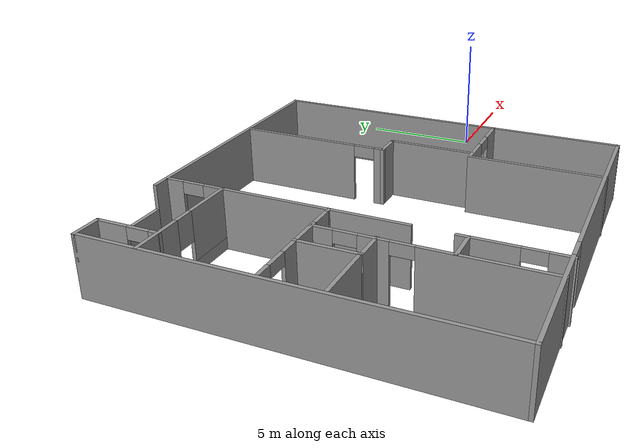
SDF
<?xml version='1.0'?>
<sdf version='1.6'>
  <model name='myHome'>
    <pose frame=''>-11.6078 -0.126317 0 0 -0 0</pose>
    <link name='Wall_10'>
      <pose frame=''>-5.11769 5.23212 0 0 -0 0</pose>
      <visual name='Wall_10_Visual_0'>
        <pose frame=''>-1.42901 0 1.25 0 -0 0</pose>
        <geometry>
          <box>
            <size>2.14199 0.15 2.5</size>
          </box>
        </geometry>
        <material>
          <script>
            <uri>file://media/materials/scripts/gazebo.material</uri>
            <name>Gazebo/Grey</name>
          </script>
          <ambient>1 1 1 1</ambient>
        </material>
        <meta>
          <layer>0</layer>
        </meta>
      </visual>
      <collision name='Wall_10_Collision_0'>
        <geometry>
          <box>
            <size>2.14199 0.15 2.5</size>
          </box>
        </geometry>
        <pose frame=''>-1.42901 0 1.25 0 -0 0</pose>
      </collision>
      <visual name='Wall_10_Visual_1'>
        <pose frame=''>1.07099 0 0.25 0 -0 0</pose>
        <geometry>
          <box>
            <size>2.85801 0.15 0.5</size>
          </box>
        </geometry>
        <material>
          <script>
            <uri>file://media/materials/scripts/gazebo.material</uri>
            <name>Gazebo/Grey</name>
          </script>
          <ambient>1 1 1 1</ambient>
        </material>
        <meta>
          <layer>0</layer>
        </meta>
      </visual>
      <collision name='Wall_10_Collision_1'>
        <geometry>
          <box>
            <size>2.85801 0.15 0.5</size>
          </box>
        </geometry>
        <pose frame=''>1.07099 0 0.25 0 -0 0</pose>
      </collision>
      <visual name='Wall_10_Visual_2'>
        <pose frame=''>1.47099 0 1.5 0 -0 0</pose>
        <geometry>
          <box>
            <size>2.05801 0.15 2</size>
          </box>
        </geometry>
        <material>
          <script>
            <uri>file://media/materials/scripts/gazebo.material</uri>
            <name>Gazebo/Grey</name>
          </script>
          <ambient>1 1 1 1</ambient>
        </material>
        <meta>
          <layer>0</layer>
        </meta>
      </visual>
      <collision name='Wall_10_Collision_2'>
        <geometry>
          <box>
            <size>2.05801 0.15 2</size>
          </box>
        </geometry>
        <pose frame=''>1.47099 0 1.5 0 -0 0</pose>
      </collision>
      <visual name='Wall_10_Visual_3'>
        <pose frame=''>0.041986 0 1.9 0 -0 0</pose>
        <geometry>
          <box>
            <size>0.8 0.15 1.2</size>
          </box>
        </geometry>
        <material>
          <script>
            <uri>file://media/materials/scripts/gazebo.material</uri>
            <name>Gazebo/Grey</name>
          </script>
          <ambient>1 1 1 1</ambient>
        </material>
        <meta>
          <layer>0</layer>
        </meta>
      </visual>
      <collision name='Wall_10_Collision_3'>
        <geometry>
          <box>
            <size>0.8 0.15 1.2</size>
          </box>
        </geometry>
        <pose frame=''>0.041986 0 1.9 0 -0 0</pose>
      </collision>
    </link>
    <link name='Wall_12'>
      <pose frame=''>-5.07251 0.82481 0 0 -0 0.002718</pose>
      <visual name='Wall_12_Visual_0'>
        <pose frame=''>-2.12256 0 1.25 0 -0 0</pose>
        <geometry>
          <box>
            <size>0.729711 0.15 2.5</size>
          </box>
        </geometry>
        <material>
          <script>
            <uri>file://media/materials/scripts/gazebo.material</uri>
            <name>Gazebo/Grey</name>
          </script>
          <ambient>1 1 1 1</ambient>
        </material>
        <meta>
          <layer>0</layer>
        </meta>
      </visual>
      <collision name='Wall_12_Collision_0'>
        <geometry>
          <box>
            <size>0.729711 0.15 2.5</size>
          </box>
        </geometry>
        <pose frame=''>-2.12256 0 1.25 0 -0 0</pose>
      </collision>
      <visual name='Wall_12_Visual_1'>
        <pose frame=''>0.241986 0 1.25 0 -0 0</pose>
        <geometry>
          <box>
            <size>2.19939 0.15 2.5</size>
          </box>
        </geometry>
        <material>
          <script>
            <uri>file://media/materials/scripts/gazebo.material</uri>
            <name>Gazebo/Grey</name>
          </script>
          <ambient>1 1 1 1</ambient>
        </material>
        <meta>
          <layer>0</layer>
        </meta>
      </visual>
      <collision name='Wall_12_Collision_1'>
        <geometry>
          <box>
            <size>2.19939 0.15 2.5</size>
          </box>
        </geometry>
        <pose frame=''>0.241986 0 1.25 0 -0 0</pose>
      </collision>
      <visual name='Wall_12_Visual_2'>
        <pose frame=''>2.36455 0 1.25 0 -0 0</pose>
        <geometry>
          <box>
            <size>0.245739 0.15 2.5</size>
          </box>
        </geometry>
        <material>
          <script>
            <uri>file://media/materials/scripts/gazebo.material</uri>
            <name>Gazebo/Grey</name>
          </script>
          <ambient>1 1 1 1</ambient>
        </material>
        <meta>
          <layer>0</layer>
        </meta>
      </visual>
      <collision name='Wall_12_Collision_2'>
        <geometry>
          <box>
            <size>0.245739 0.15 2.5</size>
          </box>
        </geometry>
        <pose frame=''>2.36455 0 1.25 0 -0 0</pose>
      </collision>
      <visual name='Wall_12_Visual_3'>
        <pose frame=''>-1.30771 0 2.25 0 -0 0</pose>
        <geometry>
          <box>
            <size>0.9 0.15 0.5</size>
          </box>
        </geometry>
        <material>
          <script>
            <uri>file://media/materials/scripts/gazebo.material</uri>
            <name>Gazebo/Grey</name>
          </script>
          <ambient>1 1 1 1</ambient>
        </material>
        <meta>
          <layer>0</layer>
        </meta>
      </visual>
      <collision name='Wall_12_Collision_3'>
        <geometry>
          <box>
            <size>0.9 0.15 0.5</size>
          </box>
        </geometry>
        <pose frame=''>-1.30771 0 2.25 0 -0 0</pose>
      </collision>
      <visual name='Wall_12_Visual_4'>
        <pose frame=''>1.79168 0 2.25 0 -0 0</pose>
        <geometry>
          <box>
            <size>0.9 0.15 0.5</size>
          </box>
        </geometry>
        <material>
          <script>
            <uri>file://media/materials/scripts/gazebo.material</uri>
            <name>Gazebo/Grey</name>
          </script>
          <ambient>1 1 1 1</ambient>
        </material>
        <meta>
          <layer>0</layer>
        </meta>
      </visual>
      <collision name='Wall_12_Collision_4'>
        <geometry>
          <box>
            <size>0.9 0.15 0.5</size>
          </box>
        </geometry>
        <pose frame=''>1.79168 0 2.25 0 -0 0</pose>
      </collision>
    </link>
    <link name='Wall_14'>
      <collision name='Wall_14_Collision'>
        <geometry>
          <box>
            <size>2.5 0.15 2.5</size>
          </box>
        </geometry>
        <pose frame=''>0 0 1.25 0 -0 0</pose>
      </collision>
      <visual name='Wall_14_Visual'>
        <pose frame=''>0 0 1.25 0 -0 0</pose>
        <geometry>
          <box>
            <size>2.5 0.15 2.5</size>
          </box>
        </geometry>
        <material>
          <script>
            <uri>file://media/materials/scripts/gazebo.material</uri>
            <name>Gazebo/Grey</name>
          </script>
          <ambient>1 1 1 1</ambient>
        </material>
        <meta>
          <layer>0</layer>
        </meta>
      </visual>
      <pose frame=''>-6.27494 -1.49043 0 0 -0 0</pose>
    </link>
    <link name='Wall_15'>
      <collision name='Wall_15_Collision'>
        <geometry>
          <box>
            <size>2.47215 0.15 2.5</size>
          </box>
        </geometry>
        <pose frame=''>0 0 1.25 0 -0 0</pose>
      </collision>
      <visual name='Wall_15_Visual'>
        <pose frame=''>0 0 1.25 0 -0 0</pose>
        <geometry>
          <box>
            <size>2.47215 0.15 2.5</size>
          </box>
        </geometry>
        <material>
          <script>
            <uri>file://media/materials/scripts/gazebo.material</uri>
            <name>Gazebo/Grey</name>
          </script>
          <ambient>1 1 1 1</ambient>
        </material>
        <meta>
          <layer>0</layer>
        </meta>
      </visual>
      <pose frame=''>-5.10497 -0.329534 0 0 -0 1.57513</pose>
    </link>
    <link name='Wall_2'>
      <pose frame=''>-0.004229 -7.66387 0 0 -0 0</pose>
      <visual name='Wall_2_Visual_0'>
        <pose frame=''>-5.06689 0 1.25 0 -0 0</pose>
        <geometry>
          <box>
            <size>5.11623 0.15 2.5</size>
          </box>
        </geometry>
        <material>
          <script>
            <uri>file://media/materials/scripts/gazebo.material</uri>
            <name>Gazebo/Grey</name>
          </script>
          <ambient>1 1 1 1</ambient>
        </material>
        <meta>
          <layer>0</layer>
        </meta>
      </visual>
      <collision name='Wall_2_Collision_0'>
        <geometry>
          <box>
            <size>5.11623 0.15 2.5</size>
          </box>
        </geometry>
        <pose frame=''>-5.06689 0 1.25 0 -0 0</pose>
      </collision>
      <visual name='Wall_2_Visual_1'>
        <pose frame=''>3.00811 0 1.25 0 -0 0</pose>
        <geometry>
          <box>
            <size>9.23377 0.15 2.5</size>
          </box>
        </geometry>
        <material>
          <script>
            <uri>file://media/materials/scripts/gazebo.material</uri>
            <name>Gazebo/Grey</name>
          </script>
          <ambient>1 1 1 1</ambient>
        </material>
        <meta>
          <layer>0</layer>
        </meta>
      </visual>
      <collision name='Wall_2_Collision_1'>
        <geometry>
          <box>
            <size>9.23377 0.15 2.5</size>
          </box>
        </geometry>
        <pose frame=''>3.00811 0 1.25 0 -0 0</pose>
      </collision>
      <visual name='Wall_2_Visual_2'>
        <pose frame=''>-2.05877 0 2.25 0 -0 0</pose>
        <geometry>
          <box>
            <size>0.9 0.15 0.5</size>
          </box>
        </geometry>
        <material>
          <script>
            <uri>file://media/materials/scripts/gazebo.material</uri>
            <name>Gazebo/Grey</name>
          </script>
          <ambient>1 1 1 1</ambient>
        </material>
        <meta>
          <layer>0</layer>
        </meta>
      </visual>
      <collision name='Wall_2_Collision_2'>
        <geometry>
          <box>
            <size>0.9 0.15 0.5</size>
          </box>
        </geometry>
        <pose frame=''>-2.05877 0 2.25 0 -0 0</pose>
      </collision>
    </link>
    <link name='Wall_20'>
      <pose frame=''>-2.69017 -5.80768 0 0 -0 1.5708</pose>
      <visual name='Wall_20_Visual_0'>
        <pose frame=''>-1.56183 0 1.25 0 -0 0</pose>
        <geometry>
          <box>
            <size>0.876348 0.15 2.5</size>
          </box>
        </geometry>
        <material>
          <script>
            <uri>file://media/materials/scripts/gazebo.material</uri>
            <name>Gazebo/Grey</name>
          </script>
          <ambient>1 1 1 1</ambient>
        </material>
        <meta>
          <layer>0</layer>
        </meta>
      </visual>
      <collision name='Wall_20_Collision_0'>
        <geometry>
          <box>
            <size>0.876348 0.15 2.5</size>
          </box>
        </geometry>
        <pose frame=''>-1.56183 0 1.25 0 -0 0</pose>
      </collision>
      <visual name='Wall_20_Visual_1'>
        <pose frame=''>0.888174 0 1.25 0 -0 0</pose>
        <geometry>
          <box>
            <size>2.22365 0.15 2.5</size>
          </box>
        </geometry>
        <material>
          <script>
            <uri>file://media/materials/scripts/gazebo.material</uri>
            <name>Gazebo/Grey</name>
          </script>
          <ambient>1 1 1 1</ambient>
        </material>
        <meta>
          <layer>0</layer>
        </meta>
      </visual>
      <collision name='Wall_20_Collision_1'>
        <geometry>
          <box>
            <size>2.22365 0.15 2.5</size>
          </box>
        </geometry>
        <pose frame=''>0.888174 0 1.25 0 -0 0</pose>
      </collision>
      <visual name='Wall_20_Visual_2'>
        <pose frame=''>-0.673652 0 2.25 0 -0 0</pose>
        <geometry>
          <box>
            <size>0.9 0.15 0.5</size>
          </box>
        </geometry>
        <material>
          <script>
            <uri>file://media/materials/scripts/gazebo.material</uri>
            <name>Gazebo/Grey</name>
          </script>
          <ambient>1 1 1 1</ambient>
        </material>
        <meta>
          <layer>0</layer>
        </meta>
      </visual>
      <collision name='Wall_20_Collision_2'>
        <geometry>
          <box>
            <size>0.9 0.15 0.5</size>
          </box>
        </geometry>
        <pose frame=''>-0.673652 0 2.25 0 -0 0</pose>
      </collision>
    </link>
    <link name='Wall_25'>
      <pose frame=''>-3.96066 -3.43328 0 0 0 -1.5708</pose>
      <visual name='Wall_25_Visual_0'>
        <pose frame=''>-3.89689 0 1.25 0 -0 0</pose>
        <geometry>
          <box>
            <size>0.885529 0.15 2.5</size>
          </box>
        </geometry>
        <material>
          <script>
            <uri>file://media/materials/scripts/gazebo.material</uri>
            <name>Gazebo/Grey</name>
          </script>
          <ambient>1 1 1 1</ambient>
        </material>
        <meta>
          <layer>0</layer>
        </meta>
      </visual>
      <collision name='Wall_25_Collision_0'>
        <geometry>
          <box>
            <size>0.885529 0.15 2.5</size>
          </box>
        </geometry>
        <pose frame=''>-3.89689 0 1.25 0 -0 0</pose>
      </collision>
      <visual name='Wall_25_Visual_1'>
        <pose frame=''>-1.98599 0 1.25 0 -0 0</pose>
        <geometry>
          <box>
            <size>1.13626 0.15 2.5</size>
          </box>
        </geometry>
        <material>
          <script>
            <uri>file://media/materials/scripts/gazebo.material</uri>
            <name>Gazebo/Grey</name>
          </script>
          <ambient>1 1 1 1</ambient>
        </material>
        <meta>
          <layer>0</layer>
        </meta>
      </visual>
      <collision name='Wall_25_Collision_1'>
        <geometry>
          <box>
            <size>1.13626 0.15 2.5</size>
          </box>
        </geometry>
        <pose frame=''>-1.98599 0 1.25 0 -0 0</pose>
      </collision>
      <visual name='Wall_25_Visual_2'>
        <pose frame=''>1.91089 0 1.25 0 -0 0</pose>
        <geometry>
          <box>
            <size>4.85751 0.15 2.5</size>
          </box>
        </geometry>
        <material>
          <script>
            <uri>file://media/materials/scripts/gazebo.material</uri>
            <name>Gazebo/Grey</name>
          </script>
          <ambient>1 1 1 1</ambient>
        </material>
        <meta>
          <layer>0</layer>
        </meta>
      </visual>
      <collision name='Wall_25_Collision_2'>
        <geometry>
          <box>
            <size>4.85751 0.15 2.5</size>
          </box>
        </geometry>
        <pose frame=''>1.91089 0 1.25 0 -0 0</pose>
      </collision>
      <visual name='Wall_25_Visual_3'>
        <pose frame=''>-3.00412 0 2.25 0 -0 0</pose>
        <geometry>
          <box>
            <size>0.9 0.15 0.5</size>
          </box>
        </geometry>
        <material>
          <script>
            <uri>file://media/materials/scripts/gazebo.material</uri>
            <name>Gazebo/Grey</name>
          </script>
          <ambient>1 1 1 1</ambient>
        </material>
        <meta>
          <layer>0</layer>
        </meta>
      </visual>
      <collision name='Wall_25_Collision_3'>
        <geometry>
          <box>
            <size>0.9 0.15 0.5</size>
          </box>
        </geometry>
        <pose frame=''>-3.00412 0 2.25 0 -0 0</pose>
      </collision>
      <visual name='Wall_25_Visual_4'>
        <pose frame=''>-0.967864 0 2.25 0 -0 0</pose>
        <geometry>
          <box>
            <size>0.9 0.15 0.5</size>
          </box>
        </geometry>
        <material>
          <script>
            <uri>file://media/materials/scripts/gazebo.material</uri>
            <name>Gazebo/Grey</name>
          </script>
          <ambient>1 1 1 1</ambient>
        </material>
        <meta>
          <layer>0</layer>
        </meta>
      </visual>
      <collision name='Wall_25_Collision_4'>
        <geometry>
          <box>
            <size>0.9 0.15 0.5</size>
          </box>
        </geometry>
        <pose frame=''>-0.967864 0 2.25 0 -0 0</pose>
      </collision>
    </link>
    <link name='Wall_27'>
      <collision name='Wall_27_Collision'>
        <geometry>
          <box>
            <size>1.29934 0.15 2.5</size>
          </box>
        </geometry>
        <pose frame=''>0 0 1.25 0 -0 0</pose>
      </collision>
      <visual name='Wall_27_Visual'>
        <pose frame=''>0 0 1.25 0 -0 0</pose>
        <geometry>
          <box>
            <size>1.29934 0.15 2.5</size>
          </box>
        </geometry>
        <material>
          <script>
            <uri>file://media/materials/scripts/gazebo.material</uri>
            <name>Gazebo/Grey</name>
          </script>
          <ambient>1 1 1 1</ambient>
        </material>
        <meta>
          <layer>0</layer>
        </meta>
      </visual>
      <pose frame=''>-4.50509 -1.5278 0 0 -0 0</pose>
    </link>
    <link name='Wall_29'>
      <collision name='Wall_29_Collision'>
        <geometry>
          <box>
            <size>1.36212 0.15 2.5</size>
          </box>
        </geometry>
        <pose frame=''>0 0 1.25 0 -0 0</pose>
      </collision>
      <visual name='Wall_29_Visual'>
        <pose frame=''>0 0 1.25 0 -0 0</pose>
        <geometry>
          <box>
            <size>1.36212 0.15 2.5</size>
          </box>
        </geometry>
        <material>
          <script>
            <uri>file://media/materials/scripts/gazebo.material</uri>
            <name>Gazebo/Grey</name>
          </script>
          <ambient>1 1 1 1</ambient>
        </material>
        <meta>
          <layer>0</layer>
        </meta>
      </visual>
      <pose frame=''>-3.33093 -4.27511 0 0 -0 0</pose>
    </link>
    <link name='Wall_3'>
      <collision name='Wall_3_Collision'>
        <geometry>
          <box>
            <size>15.5462 0.15 2.5</size>
          </box>
        </geometry>
        <pose frame=''>0 0 1.25 0 -0 0</pose>
      </collision>
      <visual name='Wall_3_Visual'>
        <pose frame=''>0 0 1.25 0 -0 0</pose>
        <geometry>
          <box>
            <size>15.5462 0.15 2.5</size>
          </box>
        </geometry>
        <material>
          <script>
            <uri>file://media/materials/scripts/gazebo.material</uri>
            <name>Gazebo/Grey</name>
          </script>
          <ambient>1 1 1 1</ambient>
        </material>
        <meta>
          <layer>0</layer>
        </meta>
      </visual>
      <pose frame=''>7.5458 0.034222 0 0 -0 1.57079</pose>
    </link>
    <link name='Wall_33'>
      <pose frame=''>-2.65447 2.71323 0 0 -0 1.5708</pose>
      <visual name='Wall_33_Visual_0'>
        <pose frame=''>-0.835326 0 1.25 0 -0 0</pose>
        <geometry>
          <box>
            <size>8.32935 0.15 2.5</size>
          </box>
        </geometry>
        <material>
          <script>
            <uri>file://media/materials/scripts/gazebo.material</uri>
            <name>Gazebo/Grey</name>
          </script>
          <ambient>1 1 1 1</ambient>
        </material>
        <meta>
          <layer>0</layer>
        </meta>
      </visual>
      <collision name='Wall_33_Collision_0'>
        <geometry>
          <box>
            <size>8.32935 0.15 2.5</size>
          </box>
        </geometry>
        <pose frame=''>-0.835326 0 1.25 0 -0 0</pose>
      </collision>
      <visual name='Wall_33_Visual_1'>
        <pose frame=''>4.61467 0 1.25 0 -0 0</pose>
        <geometry>
          <box>
            <size>0.770652 0.15 2.5</size>
          </box>
        </geometry>
        <material>
          <script>
            <uri>file://media/materials/scripts/gazebo.material</uri>
            <name>Gazebo/Grey</name>
          </script>
          <ambient>1 1 1 1</ambient>
        </material>
        <meta>
          <layer>0</layer>
        </meta>
      </visual>
      <collision name='Wall_33_Collision_1'>
        <geometry>
          <box>
            <size>0.770652 0.15 2.5</size>
          </box>
        </geometry>
        <pose frame=''>4.61467 0 1.25 0 -0 0</pose>
      </collision>
      <visual name='Wall_33_Visual_2'>
        <pose frame=''>3.77935 0 2.25 0 -0 0</pose>
        <geometry>
          <box>
            <size>0.9 0.15 0.5</size>
          </box>
        </geometry>
        <material>
          <script>
            <uri>file://media/materials/scripts/gazebo.material</uri>
            <name>Gazebo/Grey</name>
          </script>
          <ambient>1 1 1 1</ambient>
        </material>
        <meta>
          <layer>0</layer>
        </meta>
      </visual>
      <collision name='Wall_33_Collision_2'>
        <geometry>
          <box>
            <size>0.9 0.15 0.5</size>
          </box>
        </geometry>
        <pose frame=''>3.77935 0 2.25 0 -0 0</pose>
      </collision>
    </link>
    <link name='Wall_35'>
      <collision name='Wall_35_Collision'>
        <geometry>
          <box>
            <size>5.56956 0.15 2.5</size>
          </box>
        </geometry>
        <pose frame=''>0 0 1.25 0 -0 0</pose>
      </collision>
      <visual name='Wall_35_Visual'>
        <pose frame=''>0 0 1.25 0 -0 0</pose>
        <geometry>
          <box>
            <size>5.56956 0.15 2.5</size>
          </box>
        </geometry>
        <material>
          <script>
            <uri>file://media/materials/scripts/gazebo.material</uri>
            <name>Gazebo/Grey</name>
          </script>
          <ambient>1 1 1 1</ambient>
        </material>
        <meta>
          <layer>0</layer>
        </meta>
      </visual>
      <pose frame=''>3.95423 -4.98895 0 0 -0 1.5708</pose>
    </link>
    <link name='Wall_38'>
      <pose frame=''>5.75423 -2.27916 0 0 -0 0</pose>
      <visual name='Wall_38_Visual_0'>
        <pose frame=''>-1.09311 0 1.25 0 -0 0</pose>
        <geometry>
          <box>
            <size>1.56378 0.15 2.5</size>
          </box>
        </geometry>
        <material>
          <script>
            <uri>file://media/materials/scripts/gazebo.material</uri>
            <name>Gazebo/Grey</name>
          </script>
          <ambient>1 1 1 1</ambient>
        </material>
        <meta>
          <layer>0</layer>
        </meta>
      </visual>
      <collision name='Wall_38_Collision_0'>
        <geometry>
          <box>
            <size>1.56378 0.15 2.5</size>
          </box>
        </geometry>
        <pose frame=''>-1.09311 0 1.25 0 -0 0</pose>
      </collision>
      <visual name='Wall_38_Visual_1'>
        <pose frame=''>1.23189 0 1.25 0 -0 0</pose>
        <geometry>
          <box>
            <size>1.28622 0.15 2.5</size>
          </box>
        </geometry>
        <material>
          <script>
            <uri>file://media/materials/scripts/gazebo.material</uri>
            <name>Gazebo/Grey</name>
          </script>
          <ambient>1 1 1 1</ambient>
        </material>
        <meta>
          <layer>0</layer>
        </meta>
      </visual>
      <collision name='Wall_38_Collision_1'>
        <geometry>
          <box>
            <size>1.28622 0.15 2.5</size>
          </box>
        </geometry>
        <pose frame=''>1.23189 0 1.25 0 -0 0</pose>
      </collision>
      <visual name='Wall_38_Visual_2'>
        <pose frame=''>0.138776 0 2.25 0 -0 0</pose>
        <geometry>
          <box>
            <size>0.9 0.15 0.5</size>
          </box>
        </geometry>
        <material>
          <script>
            <uri>file://media/materials/scripts/gazebo.material</uri>
            <name>Gazebo/Grey</name>
          </script>
          <ambient>1 1 1 1</ambient>
        </material>
        <meta>
          <layer>0</layer>
        </meta>
      </visual>
      <collision name='Wall_38_Collision_2'>
        <geometry>
          <box>
            <size>0.9 0.15 0.5</size>
          </box>
        </geometry>
        <pose frame=''>0.138776 0 2.25 0 -0 0</pose>
      </collision>
    </link>
    <link name='Wall_40'>
      <collision name='Wall_40_Collision'>
        <geometry>
          <box>
            <size>3.66304 0.15 2.5</size>
          </box>
        </geometry>
        <pose frame=''>0 0 1.25 0 -0 0</pose>
      </collision>
      <visual name='Wall_40_Visual'>
        <pose frame=''>0 0 1.25 0 -0 0</pose>
        <geometry>
          <box>
            <size>3.66304 0.15 2.5</size>
          </box>
        </geometry>
        <material>
          <script>
            <uri>file://media/materials/scripts/gazebo.material</uri>
            <name>Gazebo/Grey</name>
          </script>
          <ambient>1 1 1 1</ambient>
        </material>
        <meta>
          <layer>0</layer>
        </meta>
      </visual>
      <pose frame=''>4.33684 -0.481336 0 0 -0 1.5708</pose>
    </link>
    <link name='Wall_41'>
      <collision name='Wall_41_Collision'>
        <geometry>
          <box>
            <size>1.22826 0.15 2.5</size>
          </box>
        </geometry>
        <pose frame=''>0 0 1.25 0 -0 0</pose>
      </collision>
      <visual name='Wall_41_Visual'>
        <pose frame=''>0 0 1.25 0 -0 0</pose>
        <geometry>
          <box>
            <size>1.22826 0.15 2.5</size>
          </box>
        </geometry>
        <material>
          <script>
            <uri>file://media/materials/scripts/gazebo.material</uri>
            <name>Gazebo/Grey</name>
          </script>
          <ambient>1 1 1 1</ambient>
        </material>
        <meta>
          <layer>0</layer>
        </meta>
      </visual>
      <pose frame=''>3.79771 1.27519 0 0 -0 3.14159</pose>
    </link>
    <link name='Wall_42'>
      <pose frame=''>3.25858 4.45019 0 0 -0 1.5708</pose>
      <visual name='Wall_42_Visual_0'>
        <pose frame=''>-3.02011 0 1.25 0 -0 0</pose>
        <geometry>
          <box>
            <size>0.459783 0.15 2.5</size>
          </box>
        </geometry>
        <material>
          <script>
            <uri>file://media/materials/scripts/gazebo.material</uri>
            <name>Gazebo/Grey</name>
          </script>
          <ambient>1 1 1 1</ambient>
        </material>
        <meta>
          <layer>0</layer>
        </meta>
      </visual>
      <collision name='Wall_42_Collision_0'>
        <geometry>
          <box>
            <size>0.459783 0.15 2.5</size>
          </box>
        </geometry>
        <pose frame=''>-3.02011 0 1.25 0 -0 0</pose>
      </collision>
      <visual name='Wall_42_Visual_1'>
        <pose frame=''>0.679891 0 1.25 0 -0 0</pose>
        <geometry>
          <box>
            <size>5.14022 0.15 2.5</size>
          </box>
        </geometry>
        <material>
          <script>
            <uri>file://media/materials/scripts/gazebo.material</uri>
            <name>Gazebo/Grey</name>
          </script>
          <ambient>1 1 1 1</ambient>
        </material>
        <meta>
          <layer>0</layer>
        </meta>
      </visual>
      <collision name='Wall_42_Collision_1'>
        <geometry>
          <box>
            <size>5.14022 0.15 2.5</size>
          </box>
        </geometry>
        <pose frame=''>0.679891 0 1.25 0 -0 0</pose>
      </collision>
      <visual name='Wall_42_Visual_2'>
        <pose frame=''>-2.34022 0 2.25 0 -0 0</pose>
        <geometry>
          <box>
            <size>0.9 0.15 0.5</size>
          </box>
        </geometry>
        <material>
          <script>
            <uri>file://media/materials/scripts/gazebo.material</uri>
            <name>Gazebo/Grey</name>
          </script>
          <ambient>1 1 1 1</ambient>
        </material>
        <meta>
          <layer>0</layer>
        </meta>
      </visual>
      <collision name='Wall_42_Collision_2'>
        <geometry>
          <box>
            <size>0.9 0.15 0.5</size>
          </box>
        </geometry>
        <pose frame=''>-2.34022 0 2.25 0 -0 0</pose>
      </collision>
    </link>
    <link name='Wall_45'>
      <collision name='Wall_45_Collision'>
        <geometry>
          <box>
            <size>1.25 0.15 2.5</size>
          </box>
        </geometry>
        <pose frame=''>0 0 1.25 0 -0 0</pose>
      </collision>
      <visual name='Wall_45_Visual'>
        <pose frame=''>0 0 1.25 0 -0 0</pose>
        <geometry>
          <box>
            <size>1.25 0.15 2.5</size>
          </box>
        </geometry>
        <material>
          <script>
            <uri>file://media/materials/scripts/gazebo.material</uri>
            <name>Gazebo/Grey</name>
          </script>
          <ambient>1 1 1 1</ambient>
        </material>
        <meta>
          <layer>0</layer>
        </meta>
      </visual>
      <pose frame=''>-7.00417 7.73232 0 0 -0 0</pose>
    </link>
    <link name='Wall_46'>
      <pose frame=''>-6.44836 6.47388 0 0 0 -1.56618</pose>
      <visual name='Wall_46_Visual_0'>
        <pose frame=''>-0.670684 0 1.25 0 -0 0</pose>
        <geometry>
          <box>
            <size>1.32557 0.15 2.5</size>
          </box>
        </geometry>
        <material>
          <script>
            <uri>file://media/materials/scripts/gazebo.material</uri>
            <name>Gazebo/Grey</name>
          </script>
          <ambient>1 1 1 1</ambient>
        </material>
        <meta>
          <layer>0</layer>
        </meta>
      </visual>
      <collision name='Wall_46_Collision_0'>
        <geometry>
          <box>
            <size>1.32557 0.15 2.5</size>
          </box>
        </geometry>
        <pose frame=''>-0.670684 0 1.25 0 -0 0</pose>
      </collision>
      <visual name='Wall_46_Visual_1'>
        <pose frame=''>1.11278 0 1.25 0 -0 0</pose>
        <geometry>
          <box>
            <size>0.441368 0.15 2.5</size>
          </box>
        </geometry>
        <material>
          <script>
            <uri>file://media/materials/scripts/gazebo.material</uri>
            <name>Gazebo/Grey</name>
          </script>
          <ambient>1 1 1 1</ambient>
        </material>
        <meta>
          <layer>0</layer>
        </meta>
      </visual>
      <collision name='Wall_46_Collision_1'>
        <geometry>
          <box>
            <size>0.441368 0.15 2.5</size>
          </box>
        </geometry>
        <pose frame=''>1.11278 0 1.25 0 -0 0</pose>
      </collision>
      <visual name='Wall_46_Visual_2'>
        <pose frame=''>0.4421 0 2.25 0 -0 0</pose>
        <geometry>
          <box>
            <size>0.9 0.15 0.5</size>
          </box>
        </geometry>
        <material>
          <script>
            <uri>file://media/materials/scripts/gazebo.material</uri>
            <name>Gazebo/Grey</name>
          </script>
          <ambient>1 1 1 1</ambient>
        </material>
        <meta>
          <layer>0</layer>
        </meta>
      </visual>
      <collision name='Wall_46_Collision_2'>
        <geometry>
          <box>
            <size>0.9 0.15 0.5</size>
          </box>
        </geometry>
        <pose frame=''>0.4421 0 2.25 0 -0 0</pose>
      </collision>
    </link>
    <link name='Wall_48'>
      <collision name='Wall_48_Collision'>
        <geometry>
          <box>
            <size>11 0.15 2.5</size>
          </box>
        </geometry>
        <pose frame=''>0 0 1.25 0 -0 0</pose>
      </collision>
      <visual name='Wall_48_Visual'>
        <pose frame=''>0 0 1.25 0 -0 0</pose>
        <geometry>
          <box>
            <size>11 0.15 2.5</size>
          </box>
        </geometry>
        <material>
          <script>
            <uri>file://media/materials/scripts/gazebo.material</uri>
            <name>Gazebo/Grey</name>
          </script>
          <ambient>1 1 1 1</ambient>
        </material>
        <meta>
          <layer>0</layer>
        </meta>
      </visual>
      <pose frame=''>2.10599 7.72584 0 0 -0 3.14159</pose>
    </link>
    <link name='Wall_50'>
      <collision name='Wall_50_Collision'>
        <geometry>
          <box>
            <size>3.21693 0.15 1.5</size>
          </box>
        </geometry>
        <pose frame=''>0 0 0.75 0 -0 0</pose>
      </collision>
      <visual name='Wall_50_Visual'>
        <pose frame=''>0 0 0.75 0 -0 0</pose>
        <geometry>
          <box>
            <size>3.21693 0.15 1.5</size>
          </box>
        </geometry>
        <material>
          <script>
            <uri>file://media/materials/scripts/gazebo.material</uri>
            <name>Gazebo/Grey</name>
          </script>
          <ambient>1 1 1 1</ambient>
        </material>
        <meta>
          <layer>0</layer>
        </meta>
      </visual>
      <pose frame=''>-4.92117 7.72932 0 0 0 -0.001957</pose>
    </link>
    <link name='Wall_6'>
      <collision name='Wall_6_Collision'>
        <geometry>
          <box>
            <size>15.546 0.15 2.5</size>
          </box>
        </geometry>
        <pose frame=''>0 0 1.25 0 -0 0</pose>
      </collision>
      <visual name='Wall_6_Visual'>
        <pose frame=''>0 0 1.25 0 -0 0</pose>
        <geometry>
          <box>
            <size>15.546 0.15 2.5</size>
          </box>
        </geometry>
        <material>
          <script>
            <uri>file://media/materials/scripts/gazebo.material</uri>
            <name>Gazebo/Grey</name>
          </script>
          <ambient>1 1 1 1</ambient>
        </material>
        <meta>
          <layer>0</layer>
        </meta>
      </visual>
      <pose frame=''>-7.5542 0.034222 0 0 0 -1.5708</pose>
    </link>
    <static>1</static>
  </model>
</sdf>
